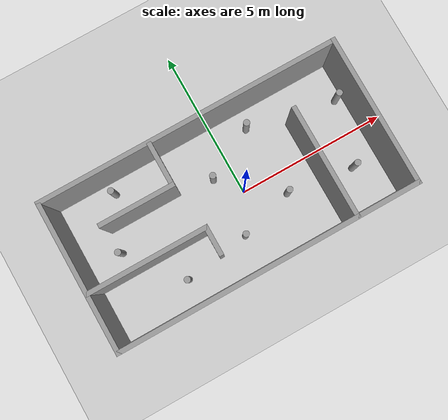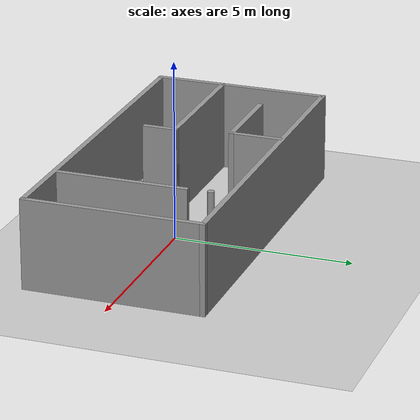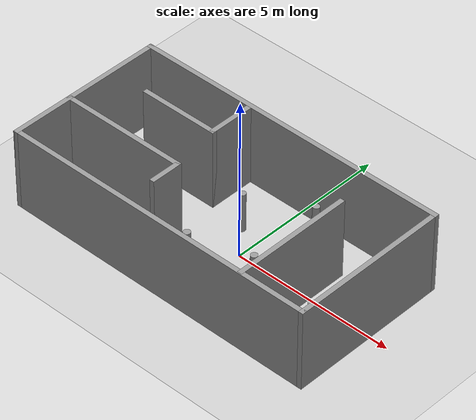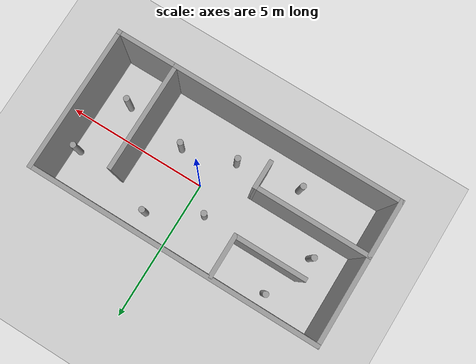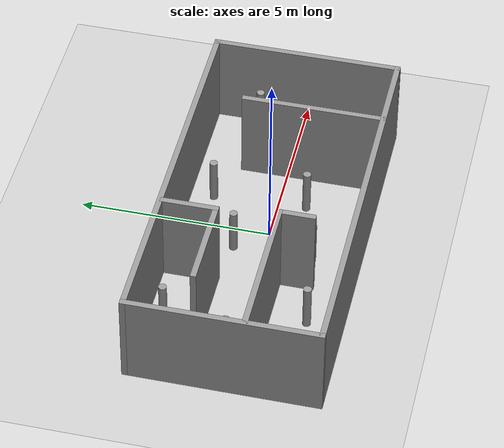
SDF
<sdf version="1.7">
 <world name="default">
  <light name="sun" type="directional">
   <pose>0 0 10 0 -0 0</pose>
   <diffuse>0.8 0.8 0.8 1</diffuse>
   <specular>0.2 0.2 0.2 1</specular>
   <attenuation>
    <range>1000</range>
    <constant>0.9</constant>
    <linear>0.01</linear>
    <quadratic>0.001</quadratic>
   </attenuation>
   <direction>-0.5 0.1 -0.9</direction>
   <spot><inner_angle>0</inner_angle><outer_angle>0</outer_angle><falloff>0</falloff></spot>
  </light>
  <model name="ground_plane">
   <static>1</static>
   <link name="link">
    <collision name="collision">
     <geometry><plane><normal>0 0 1</normal><size>100 100</size></plane></geometry>
     <surface><friction><ode><mu>100</mu><mu2>50</mu2></ode></friction></surface>
    </collision>
    <visual name="visual">
     <cast_shadows>0</cast_shadows>
     <geometry><plane><normal>0 0 1</normal><size>100 100</size></plane></geometry>
     <material>
      <script><uri>file://media/materials/scripts/gazebo.material</uri><name>Gazebo/Grey</name></script>
     </material>
    </visual>
   </link>
  </model>
  <gravity>0 0 -9.8</gravity>
  <magnetic_field>6e-06 2.3e-05 -4.2e-05</magnetic_field>
  <atmosphere type="adiabatic"/>
  <physics type="ode">
   <max_step_size>0.001</max_step_size>
   <real_time_factor>1</real_time_factor>
   <real_time_update_rate>1000</real_time_update_rate>
  </physics>
  <scene><ambient>0.4 0.4 0.4 1</ambient><background>0.7 0.7 0.7 1</background><shadows>1</shadows></scene>
  <audio><device>default</device></audio>
  <spherical_coordinates>
   <surface_model>EARTH_WGS84</surface_model>
   <latitude_deg>0</latitude_deg>
   <longitude_deg>0</longitude_deg>
   <elevation>0</elevation>
   <heading_deg>0</heading_deg>
  </spherical_coordinates>
  <model name="cb_room_model">
   <pose>-0.106236 -0.027351 0 0 -0 0</pose>
   <link name="Wall_1">
    <collision name="Wall_1_Collision">
     <geometry><box><size>5 0.15 2.5</size></box></geometry>
     <pose>0 0 1.25 0 -0 0</pose>
    </collision>
    <visual name="Wall_1_Visual">
     <pose>0 0 1.25 0 -0 0</pose>
     <geometry><box><size>5 0.15 2.5</size></box></geometry>
     <material>
      <script><uri>file://media/materials/scripts/gazebo.material</uri><name>Gazebo/Grey</name></script>
      <ambient>1 1 1 1</ambient>
     </material>
     <meta><layer>0</layer></meta>
    </visual>
    <pose>-5.38037 -0 0 0 -0 -1.5708</pose>
   </link>
   <link name="Wall_10">
    <collision name="Wall_10_Collision">
     <geometry><box><size>2.5 0.15 2.5</size></box></geometry>
     <pose>0 0 1.25 0 -0 0</pose>
    </collision>
    <visual name="Wall_10_Visual">
     <pose>0 0 1.25 0 -0 0</pose>
     <geometry><box><size>2.5 0.15 2.5</size></box></geometry>
     <material>
      <script><uri>file://media/materials/scripts/gazebo.material</uri><name>Gazebo/Grey</name></script>
      <ambient>1 1 1 1</ambient>
     </material>
     <meta><layer>0</layer></meta>
    </visual>
    <pose>-2.93493 0.994546 0 0 -0 3.14159</pose>
   </link>
   <link name="Wall_14">
    <collision name="Wall_14_Collision">
     <geometry><box><size>3.75 0.15 2.5</size></box></geometry>
     <pose>0 0 1.25 0 -0 0</pose>
    </collision>
    <visual name="Wall_14_Visual">
     <pose>0 0 1.25 0 -0 0</pose>
     <geometry><box><size>3.75 0.15 2.5</size></box></geometry>
     <material>
      <script><uri>file://media/materials/scripts/gazebo.material</uri><name>Gazebo/Grey</name></script>
      <ambient>1 1 1 1</ambient>
     </material>
     <meta><layer>0</layer></meta>
    </visual>
    <pose>2.43819 -0.592913 0 0 -0 1.5708</pose>
   </link>
   <link name="Wall_2">
    <collision name="Wall_2_Collision">
     <geometry><box><size>10 0.15 2.5</size></box></geometry>
     <pose>0 0 1.25 0 -0 0</pose>
    </collision>
    <visual name="Wall_2_Visual">
     <pose>0 0 1.25 0 -0 0</pose>
     <geometry><box><size>10 0.15 2.5</size></box></geometry>
     <material>
      <script><uri>file://media/materials/scripts/gazebo.material</uri><name>Gazebo/Grey</name></script>
      <ambient>1 1 1 1</ambient>
     </material>
     <meta><layer>0</layer></meta>
    </visual>
    <pose>-0.455373 -2.425 0 0 -0 0</pose>
   </link>
   <link name="Wall_3">
    <collision name="Wall_3_Collision">
     <geometry><box><size>5 0.15 2.5</size></box></geometry>
     <pose>0 0 1.25 0 -0 0</pose>
    </collision>
    <visual name="Wall_3_Visual">
     <pose>0 0 1.25 0 -0 0</pose>
     <geometry><box><size>5 0.15 2.5</size></box></geometry>
     <material>
      <script><uri>file://media/materials/scripts/gazebo.material</uri><name>Gazebo/Grey</name></script>
      <ambient>1 1 1 1</ambient>
     </material>
     <meta><layer>0</layer></meta>
    </visual>
    <pose>4.46963 -0 0 0 -0 1.5708</pose>
   </link>
   <link name="Wall_4">
    <collision name="Wall_4_Collision">
     <geometry><box><size>10 0.15 2.5</size></box></geometry>
     <pose>0 0 1.25 0 -0 0</pose>
    </collision>
    <visual name="Wall_4_Visual">
     <pose>0 0 1.25 0 -0 0</pose>
     <geometry><box><size>10 0.15 2.5</size></box></geometry>
     <material>
      <script><uri>file://media/materials/scripts/gazebo.material</uri><name>Gazebo/Grey</name></script>
      <ambient>1 1 1 1</ambient>
     </material>
     <meta><layer>0</layer></meta>
    </visual>
    <pose>-0.455373 2.425 0 0 -0 3.14159</pose>
   </link>
   <link name="Wall_6">
    <collision name="Wall_6_Collision">
     <geometry><box><size>4 0.15 2.5</size></box></geometry>
     <pose>0 0 1.25 0 -0 0</pose>
    </collision>
    <visual name="Wall_6_Visual">
     <pose>0 0 1.25 0 -0 0</pose>
     <geometry><box><size>4 0.15 2.5</size></box></geometry>
     <material>
      <script><uri>file://media/materials/scripts/gazebo.material</uri><name>Gazebo/Grey</name></script>
      <ambient>1 1 1 1</ambient>
     </material>
     <meta><layer>0</layer></meta>
    </visual>
    <pose>-3.43526 -0.551809 0 0 -0 0</pose>
   </link>
   <link name="Wall_7">
    <collision name="Wall_7_Collision">
     <geometry><box><size>1 0.15 2.5</size></box></geometry>
     <pose>0 0 1.25 0 -0 0</pose>
    </collision>
    <visual name="Wall_7_Visual">
     <pose>0 0 1.25 0 -0 0</pose>
     <geometry><box><size>1 0.15 2.5</size></box></geometry>
     <material>
      <script><uri>file://media/materials/scripts/gazebo.material</uri><name>Gazebo/Grey</name></script>
      <ambient>1 1 1 1</ambient>
     </material>
     <meta><layer>0</layer></meta>
    </visual>
    <pose>-1.51026 -0.976809 0 0 -0 -1.5708</pose>
   </link>
   <link name="Wall_9">
    <collision name="Wall_9_Collision">
     <geometry><box><size>1.5 0.15 2.5</size></box></geometry>
     <pose>0 0 1.25 0 -0 0</pose>
    </collision>
    <visual name="Wall_9_Visual">
     <pose>0 0 1.25 0 -0 0</pose>
     <geometry><box><size>1.5 0.15 2.5</size></box></geometry>
     <material>
      <script><uri>file://media/materials/scripts/gazebo.material</uri><name>Gazebo/Grey</name></script>
      <ambient>1 1 1 1</ambient>
     </material>
     <meta><layer>0</layer></meta>
    </visual>
    <pose>-1.75993 1.66955 0 0 -0 -1.5708</pose>
   </link>
   <static>1</static>
  </model>
  <model name="unit_cylinder">
   <pose>-0.657908 0.798401 0.615451 0 -0 0.000249</pose>
   <link name="link">
    <inertial>
     <mass>1</mass>
     <inertia><ixx>0.145833</ixx><ixy>0</ixy><ixz>0</ixz><iyy>0.145833</iyy><iyz>0</iyz><izz>0.125</izz></inertia>
    </inertial>
    <collision name="collision">
     <geometry><cylinder><radius>0.1051</radius><length>1.23091</length></cylinder></geometry>
    </collision>
    <visual name="visual">
     <geometry><cylinder><radius>0.1051</radius><length>1.23091</length></cylinder></geometry>
     <material>
      <script><name>Gazebo/Grey</name><uri>file://media/materials/scripts/gazebo.material</uri></script>
     </material>
    </visual>
   </link>
  </model>
  <model name="unit_cylinder_clone">
   <pose>1.18107 -0.728892 0.615449 0 -0 0.000109</pose>
   <link name="link">
    <inertial>
     <mass>1</mass>
     <inertia><ixx>0.145833</ixx><ixy>0</ixy><ixz>0</ixz><iyy>0.145833</iyy><iyz>0</iyz><izz>0.125</izz></inertia>
    </inertial>
    <collision name="collision">
     <geometry><cylinder><radius>0.1051</radius><length>1.23091</length></cylinder></geometry>
    </collision>
    <visual name="visual">
     <geometry><cylinder><radius>0.1051</radius><length>1.23091</length></cylinder></geometry>
     <material>
      <script><name>Gazebo/Grey</name><uri>file://media/materials/scripts/gazebo.material</uri></script>
     </material>
    </visual>
   </link>
  </model>
  <model name="unit_cylinder_clone_0">
   <pose>-0.645742 -1.25381 0.615445 0 -0 0.000612</pose>
   <link name="link">
    <inertial>
     <mass>1</mass>
     <inertia><ixx>0.145833</ixx><ixy>0</ixy><ixz>0</ixz><iyy>0.145833</iyy><iyz>0</iyz><izz>0.125</izz></inertia>
    </inertial>
    <collision name="collision">
     <geometry><cylinder><radius>0.1051</radius><length>1.23091</length></cylinder></geometry>
    </collision>
    <visual name="visual">
     <geometry><cylinder><radius>0.1051</radius><length>1.23091</length></cylinder></geometry>
     <material>
      <script><name>Gazebo/Grey</name><uri>file://media/materials/scripts/gazebo.material</uri></script>
     </material>
    </visual>
   </link>
  </model>
  <model name="unit_cylinder_clone_1">
   <pose>-2.8665 -1.58198 0.615449 0 -0 0.000212</pose>
   <link name="link">
    <inertial>
     <mass>1</mass>
     <inertia><ixx>0.145833</ixx><ixy>0</ixy><ixz>0</ixz><iyy>0.145833</iyy><iyz>0</iyz><izz>0.125</izz></inertia>
    </inertial>
    <collision name="collision">
     <geometry><cylinder><radius>0.1051</radius><length>1.23091</length></cylinder></geometry>
    </collision>
    <visual name="visual">
     <geometry><cylinder><radius>0.1051</radius><length>1.23091</length></cylinder></geometry>
     <material>
      <script><name>Gazebo/Grey</name><uri>file://media/materials/scripts/gazebo.material</uri></script>
     </material>
    </visual>
   </link>
  </model>
  <model name="unit_cylinder_clone_2">
   <pose>-4.29708 0.166939 0.615451 0 -0 0.000248</pose>
   <link name="link">
    <inertial>
     <mass>1</mass>
     <inertia><ixx>0.145833</ixx><ixy>0</ixy><ixz>0</ixz><iyy>0.145833</iyy><iyz>0</iyz><izz>0.125</izz></inertia>
    </inertial>
    <collision name="collision">
     <geometry><cylinder><radius>0.1051</radius><length>1.23091</length></cylinder></geometry>
    </collision>
    <visual name="visual">
     <geometry><cylinder><radius>0.1051</radius><length>1.23091</length></cylinder></geometry>
     <material>
      <script><name>Gazebo/Grey</name><uri>file://media/materials/scripts/gazebo.material</uri></script>
     </material>
    </visual>
   </link>
  </model>
  <model name="unit_cylinder_clone_3">
   <pose>-3.59622 1.91531 0.615451 0 -0 0.000241</pose>
   <link name="link">
    <inertial>
     <mass>1</mass>
     <inertia><ixx>0.145833</ixx><ixy>0</ixy><ixz>0</ixz><iyy>0.145833</iyy><iyz>0</iyz><izz>0.125</izz></inertia>
    </inertial>
    <collision name="collision">
     <geometry><cylinder><radius>0.1051</radius><length>1.23091</length></cylinder></geometry>
    </collision>
    <visual name="visual">
     <geometry><cylinder><radius>0.1051</radius><length>1.23091</length></cylinder></geometry>
     <material>
      <script><name>Gazebo/Grey</name><uri>file://media/materials/scripts/gazebo.material</uri></script>
     </material>
    </visual>
   </link>
  </model>
  <model name="unit_cylinder_clone_4">
   <pose>1.05652 1.71869 0.615449 0 -0 0.000241</pose>
   <link name="link">
    <inertial>
     <mass>1</mass>
     <inertia><ixx>0.145833</ixx><ixy>0</ixy><ixz>0</ixz><iyy>0.145833</iyy><iyz>0</iyz><izz>0.125</izz></inertia>
    </inertial>
    <collision name="collision">
     <geometry><cylinder><radius>0.1051</radius><length>1.23091</length></cylinder></geometry>
    </collision>
    <visual name="visual">
     <geometry><cylinder><radius>0.1051</radius><length>1.23091</length></cylinder></geometry>
     <material>
      <script><name>Gazebo/Grey</name><uri>file://media/materials/scripts/gazebo.material</uri></script>
     </material>
    </visual>
   </link>
  </model>
  <model name="unit_cylinder_clone_5">
   <pose>4.02858 1.13182 0.615449 0 -0 0.000244</pose>
   <link name="link">
    <inertial>
     <mass>1</mass>
     <inertia><ixx>0.145833</ixx><ixy>0</ixy><ixz>0</ixz><iyy>0.145833</iyy><iyz>0</iyz><izz>0.125</izz></inertia>
    </inertial>
    <collision name="collision">
     <geometry><cylinder><radius>0.1051</radius><length>1.23091</length></cylinder></geometry>
    </collision>
    <visual name="visual">
     <geometry><cylinder><radius>0.1051</radius><length>1.23091</length></cylinder></geometry>
     <material>
      <script><name>Gazebo/Grey</name><uri>file://media/materials/scripts/gazebo.material</uri></script>
     </material>
    </visual>
   </link>
  </model>
  <model name="unit_cylinder_clone_6">
   <pose>3.40805 -1.03416 0.615449 0 -0 0.000247</pose>
   <link name="link">
    <inertial>
     <mass>1</mass>
     <inertia><ixx>0.145833</ixx><ixy>0</ixy><ixz>0</ixz><iyy>0.145833</iyy><iyz>0</iyz><izz>0.125</izz></inertia>
    </inertial>
    <collision name="collision">
     <geometry><cylinder><radius>0.1051</radius><length>1.23091</length></cylinder></geometry>
    </collision>
    <visual name="visual">
     <geometry><cylinder><radius>0.1051</radius><length>1.23091</length></cylinder></geometry>
     <material>
      <script><name>Gazebo/Grey</name><uri>file://media/materials/scripts/gazebo.material</uri></script>
     </material>
    </visual>
   </link>
  </model>
 </world>
</sdf>
